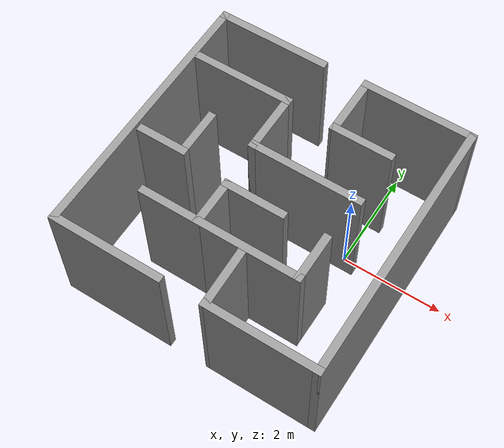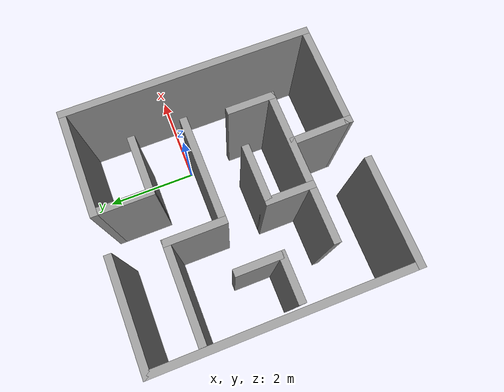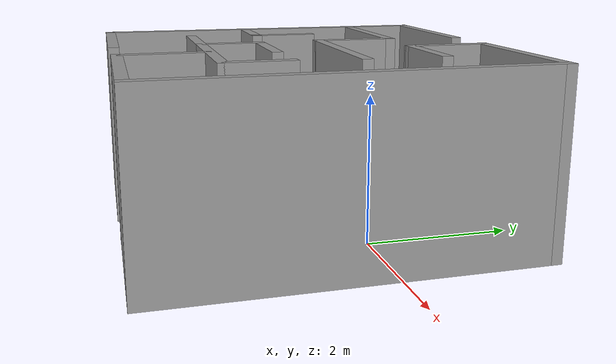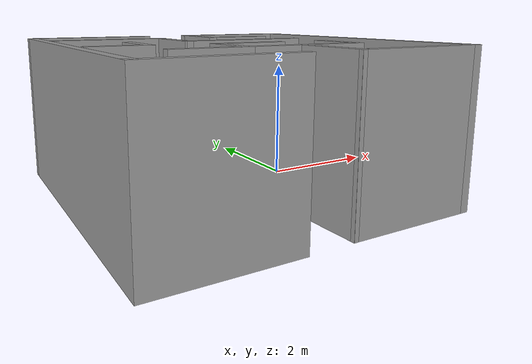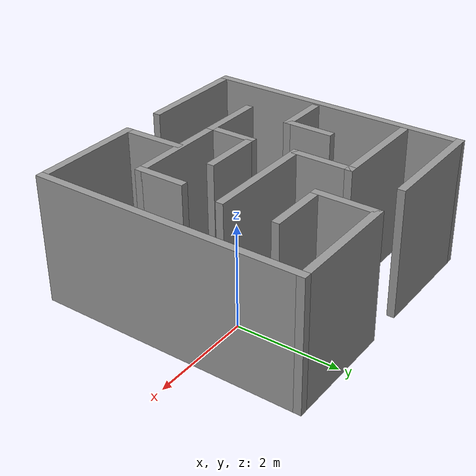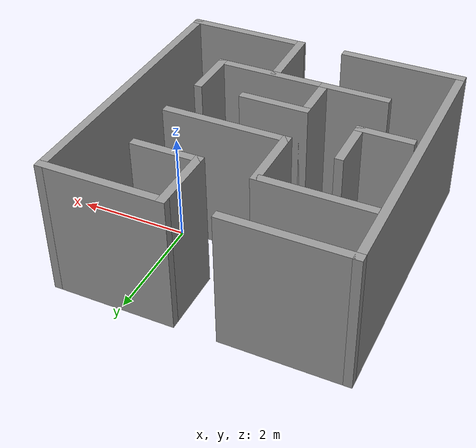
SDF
<?xml version='1.0'?>
<sdf version='1.7'>
  <model name='Untitled'>
    <pose>-1.35669 -0.540875 0 0 -0 0</pose>
    <link name='Wall_10'>
      <collision name='Wall_10_Collision'>
        <geometry>
          <box>
            <size>5.25 0.15 2.5</size>
          </box>
        </geometry>
        <pose>0 0 1.25 0 -0 0</pose>
      </collision>
      <visual name='Wall_10_Visual'>
        <pose>0 0 1.25 0 -0 0</pose>
        <geometry>
          <box>
            <size>5.25 0.15 2.5</size>
          </box>
        </geometry>
        <material>
          <script>
            <uri>file://media/materials/scripts/gazebo.material</uri>
            <name>Gazebo/Grey</name>
          </script>
          <ambient>1 1 1 1</ambient>
        </material>
        <meta>
          <layer>0</layer>
        </meta>
      </visual>
      <pose>2.54806 0.010139 0 0 -0 1.5708</pose>
    </link>
    <link name='Wall_11'>
      <collision name='Wall_11_Collision'>
        <geometry>
          <box>
            <size>2.25 0.15 2.5</size>
          </box>
        </geometry>
        <pose>0 0 1.25 0 -0 0</pose>
      </collision>
      <visual name='Wall_11_Visual'>
        <pose>0 0 1.25 0 -0 0</pose>
        <geometry>
          <box>
            <size>2.25 0.15 2.5</size>
          </box>
        </geometry>
        <material>
          <script>
            <uri>file://media/materials/scripts/gazebo.material</uri>
            <name>Gazebo/Grey</name>
          </script>
          <ambient>1 1 1 1</ambient>
        </material>
        <meta>
          <layer>0</layer>
        </meta>
      </visual>
      <pose>1.49806 2.56014 0 0 -0 3.14159</pose>
    </link>
    <link name='Wall_12'>
      <collision name='Wall_12_Collision'>
        <geometry>
          <box>
            <size>1.25 0.15 2.5</size>
          </box>
        </geometry>
        <pose>0 0 1.25 0 -0 0</pose>
      </collision>
      <visual name='Wall_12_Visual'>
        <pose>0 0 1.25 0 -0 0</pose>
        <geometry>
          <box>
            <size>1.25 0.15 2.5</size>
          </box>
        </geometry>
        <material>
          <script>
            <uri>file://media/materials/scripts/gazebo.material</uri>
            <name>Gazebo/Grey</name>
          </script>
          <ambient>1 1 1 1</ambient>
        </material>
        <meta>
          <layer>0</layer>
        </meta>
      </visual>
      <pose>0.448062 2.01014 0 0 -0 -1.5708</pose>
    </link>
    <link name='Wall_13'>
      <collision name='Wall_13_Collision'>
        <geometry>
          <box>
            <size>1.25 0.15 2.5</size>
          </box>
        </geometry>
        <pose>0 0 1.25 0 -0 0</pose>
      </collision>
      <visual name='Wall_13_Visual'>
        <pose>0 0 1.25 0 -0 0</pose>
        <geometry>
          <box>
            <size>1.25 0.15 2.5</size>
          </box>
        </geometry>
        <material>
          <script>
            <uri>file://media/materials/scripts/gazebo.material</uri>
            <name>Gazebo/Grey</name>
          </script>
          <ambient>1 1 1 1</ambient>
        </material>
        <meta>
          <layer>0</layer>
        </meta>
      </visual>
      <pose>0.998062 1.46014 0 0 -0 0</pose>
    </link>
    <link name='Wall_16'>
      <collision name='Wall_16_Collision'>
        <geometry>
          <box>
            <size>2.25 0.15 2.5</size>
          </box>
        </geometry>
        <pose>0 0 1.25 0 -0 0</pose>
      </collision>
      <visual name='Wall_16_Visual'>
        <pose>0 0 1.25 0 -0 0</pose>
        <geometry>
          <box>
            <size>2.25 0.15 2.5</size>
          </box>
        </geometry>
        <material>
          <script>
            <uri>file://media/materials/scripts/gazebo.material</uri>
            <name>Gazebo/Grey</name>
          </script>
          <ambient>1 1 1 1</ambient>
        </material>
        <meta>
          <layer>0</layer>
        </meta>
      </visual>
      <pose>-1.49806 2.53986 0 0 -0 0</pose>
    </link>
    <link name='Wall_18'>
      <collision name='Wall_18_Collision'>
        <geometry>
          <box>
            <size>2 0.15 2.5</size>
          </box>
        </geometry>
        <pose>0 0 1.25 0 -0 0</pose>
      </collision>
      <visual name='Wall_18_Visual'>
        <pose>0 0 1.25 0 -0 0</pose>
        <geometry>
          <box>
            <size>2 0.15 2.5</size>
          </box>
        </geometry>
        <material>
          <script>
            <uri>file://media/materials/scripts/gazebo.material</uri>
            <name>Gazebo/Grey</name>
          </script>
          <ambient>1 1 1 1</ambient>
        </material>
        <meta>
          <layer>0</layer>
        </meta>
      </visual>
      <pose>-1.47097 1.50567 0 0 -0 0</pose>
    </link>
    <link name='Wall_19'>
      <collision name='Wall_19_Collision'>
        <geometry>
          <box>
            <size>1.25 0.15 2.5</size>
          </box>
        </geometry>
        <pose>0 0 1.25 0 -0 0</pose>
      </collision>
      <visual name='Wall_19_Visual'>
        <pose>0 0 1.25 0 -0 0</pose>
        <geometry>
          <box>
            <size>1.25 0.15 2.5</size>
          </box>
        </geometry>
        <material>
          <script>
            <uri>file://media/materials/scripts/gazebo.material</uri>
            <name>Gazebo/Grey</name>
          </script>
          <ambient>1 1 1 1</ambient>
        </material>
        <meta>
          <layer>0</layer>
        </meta>
      </visual>
      <pose>-0.545974 0.955666 0 0 -0 -1.5708</pose>
    </link>
    <link name='Wall_20'>
      <collision name='Wall_20_Collision'>
        <geometry>
          <box>
            <size>2.25 0.15 2.5</size>
          </box>
        </geometry>
        <pose>0 0 1.25 0 -0 0</pose>
      </collision>
      <visual name='Wall_20_Visual'>
        <pose>0 0 1.25 0 -0 0</pose>
        <geometry>
          <box>
            <size>2.25 0.15 2.5</size>
          </box>
        </geometry>
        <material>
          <script>
            <uri>file://media/materials/scripts/gazebo.material</uri>
            <name>Gazebo/Grey</name>
          </script>
          <ambient>1 1 1 1</ambient>
        </material>
        <meta>
          <layer>0</layer>
        </meta>
      </visual>
      <pose>0.504026 0.405666 0 0 -0 0</pose>
    </link>
    <link name='Wall_22'>
      <collision name='Wall_22_Collision'>
        <geometry>
          <box>
            <size>1 0.15 2.5</size>
          </box>
        </geometry>
        <pose>0 0 1.25 0 -0 0</pose>
      </collision>
      <visual name='Wall_22_Visual'>
        <pose>0 0 1.25 0 -0 0</pose>
        <geometry>
          <box>
            <size>1 0.15 2.5</size>
          </box>
        </geometry>
        <material>
          <script>
            <uri>file://media/materials/scripts/gazebo.material</uri>
            <name>Gazebo/Grey</name>
          </script>
          <ambient>1 1 1 1</ambient>
        </material>
        <meta>
          <layer>0</layer>
        </meta>
      </visual>
      <pose>-1.49866 0.076889 0 0 -0 -1.5708</pose>
    </link>
    <link name='Wall_23'>
      <collision name='Wall_23_Collision'>
        <geometry>
          <box>
            <size>1 0.15 2.5</size>
          </box>
        </geometry>
        <pose>0 0 1.25 0 -0 0</pose>
      </collision>
      <visual name='Wall_23_Visual'>
        <pose>0 0 1.25 0 -0 0</pose>
        <geometry>
          <box>
            <size>1 0.15 2.5</size>
          </box>
        </geometry>
        <material>
          <script>
            <uri>file://media/materials/scripts/gazebo.material</uri>
            <name>Gazebo/Grey</name>
          </script>
          <ambient>1 1 1 1</ambient>
        </material>
        <meta>
          <layer>0</layer>
        </meta>
      </visual>
      <pose>-1.92366 -0.348111 0 0 -0 3.14159</pose>
    </link>
    <link name='Wall_25'>
      <collision name='Wall_25_Collision'>
        <geometry>
          <box>
            <size>1 0.15 2.5</size>
          </box>
        </geometry>
        <pose>0 0 1.25 0 -0 0</pose>
      </collision>
      <visual name='Wall_25_Visual'>
        <pose>0 0 1.25 0 -0 0</pose>
        <geometry>
          <box>
            <size>1 0.15 2.5</size>
          </box>
        </geometry>
        <material>
          <script>
            <uri>file://media/materials/scripts/gazebo.material</uri>
            <name>Gazebo/Grey</name>
          </script>
          <ambient>1 1 1 1</ambient>
        </material>
        <meta>
          <layer>0</layer>
        </meta>
      </visual>
      <pose>1.45184 -0.926889 0 0 -0 -1.5708</pose>
    </link>
    <link name='Wall_28'>
      <collision name='Wall_28_Collision'>
        <geometry>
          <box>
            <size>1 0.15 2.5</size>
          </box>
        </geometry>
        <pose>0 0 1.25 0 -0 0</pose>
      </collision>
      <visual name='Wall_28_Visual'>
        <pose>0 0 1.25 0 -0 0</pose>
        <geometry>
          <box>
            <size>1 0.15 2.5</size>
          </box>
        </geometry>
        <material>
          <script>
            <uri>file://media/materials/scripts/gazebo.material</uri>
            <name>Gazebo/Grey</name>
          </script>
          <ambient>1 1 1 1</ambient>
        </material>
        <meta>
          <layer>0</layer>
        </meta>
      </visual>
      <pose>-0.498161 -0.926889 0 0 -0 1.5708</pose>
    </link>
    <link name='Wall_29'>
      <collision name='Wall_29_Collision'>
        <geometry>
          <box>
            <size>1.25 0.15 2.5</size>
          </box>
        </geometry>
        <pose>0 0 1.25 0 -0 0</pose>
      </collision>
      <visual name='Wall_29_Visual'>
        <pose>0 0 1.25 0 -0 0</pose>
        <geometry>
          <box>
            <size>1.25 0.15 2.5</size>
          </box>
        </geometry>
        <material>
          <script>
            <uri>file://media/materials/scripts/gazebo.material</uri>
            <name>Gazebo/Grey</name>
          </script>
          <ambient>1 1 1 1</ambient>
        </material>
        <meta>
          <layer>0</layer>
        </meta>
      </visual>
      <pose>0.051839 -0.501889 0 0 -0 0</pose>
    </link>
    <link name='Wall_31'>
      <collision name='Wall_31_Collision'>
        <geometry>
          <box>
            <size>1.25 0.15 2.5</size>
          </box>
        </geometry>
        <pose>0 0 1.25 0 -0 0</pose>
      </collision>
      <visual name='Wall_31_Visual'>
        <pose>0 0 1.25 0 -0 0</pose>
        <geometry>
          <box>
            <size>1.25 0.15 2.5</size>
          </box>
        </geometry>
        <material>
          <script>
            <uri>file://media/materials/scripts/gazebo.material</uri>
            <name>Gazebo/Grey</name>
          </script>
          <ambient>1 1 1 1</ambient>
        </material>
        <meta>
          <layer>0</layer>
        </meta>
      </visual>
      <pose>-1.04816 -1.35189 0 0 -0 3.14159</pose>
    </link>
    <link name='Wall_35'>
      <collision name='Wall_35_Collision'>
        <geometry>
          <box>
            <size>2.1 0.15 2.5</size>
          </box>
        </geometry>
        <pose>0 0 1.25 0 -0 0</pose>
      </collision>
      <visual name='Wall_35_Visual'>
        <pose>0 0 1.25 0 -0 0</pose>
        <geometry>
          <box>
            <size>2.1 0.15 2.5</size>
          </box>
        </geometry>
        <material>
          <script>
            <uri>file://media/materials/scripts/gazebo.material</uri>
            <name>Gazebo/Grey</name>
          </script>
          <ambient>1 1 1 1</ambient>
        </material>
        <meta>
          <layer>0</layer>
        </meta>
      </visual>
      <pose>0.476839 -1.35189 0 0 -0 0</pose>
    </link>
    <link name='Wall_38'>
      <collision name='Wall_38_Collision'>
        <geometry>
          <box>
            <size>1.28282 0.15 2.5</size>
          </box>
        </geometry>
        <pose>0 0 1.25 0 -0 0</pose>
      </collision>
      <visual name='Wall_38_Visual'>
        <pose>0 0 1.25 0 -0 0</pose>
        <geometry>
          <box>
            <size>1.28282 0.15 2.5</size>
          </box>
        </geometry>
        <material>
          <script>
            <uri>file://media/materials/scripts/gazebo.material</uri>
            <name>Gazebo/Grey</name>
          </script>
          <ambient>1 1 1 1</ambient>
        </material>
        <meta>
          <layer>0</layer>
        </meta>
      </visual>
      <pose>0.435845 -1.97358 0 0 -0 -1.54923</pose>
    </link>
    <link name='Wall_6'>
      <collision name='Wall_6_Collision'>
        <geometry>
          <box>
            <size>5.25 0.15 2.5</size>
          </box>
        </geometry>
        <pose>0 0 1.25 0 -0 0</pose>
      </collision>
      <visual name='Wall_6_Visual'>
        <pose>0 0 1.25 0 -0 0</pose>
        <geometry>
          <box>
            <size>5.25 0.15 2.5</size>
          </box>
        </geometry>
        <material>
          <script>
            <uri>file://media/materials/scripts/gazebo.material</uri>
            <name>Gazebo/Grey</name>
          </script>
          <ambient>1 1 1 1</ambient>
        </material>
        <meta>
          <layer>0</layer>
        </meta>
      </visual>
      <pose>-2.54806 -0.010139 0 0 -0 -1.5708</pose>
    </link>
    <link name='Wall_7'>
      <collision name='Wall_7_Collision'>
        <geometry>
          <box>
            <size>2.25 0.15 2.5</size>
          </box>
        </geometry>
        <pose>0 0 1.25 0 -0 0</pose>
      </collision>
      <visual name='Wall_7_Visual'>
        <pose>0 0 1.25 0 -0 0</pose>
        <geometry>
          <box>
            <size>2.25 0.15 2.5</size>
          </box>
        </geometry>
        <material>
          <script>
            <uri>file://media/materials/scripts/gazebo.material</uri>
            <name>Gazebo/Grey</name>
          </script>
          <ambient>1 1 1 1</ambient>
        </material>
        <meta>
          <layer>0</layer>
        </meta>
      </visual>
      <pose>-1.49806 -2.56014 0 0 -0 0</pose>
    </link>
    <link name='Wall_9'>
      <collision name='Wall_9_Collision'>
        <geometry>
          <box>
            <size>2.25 0.15 2.5</size>
          </box>
        </geometry>
        <pose>0 0 1.25 0 -0 0</pose>
      </collision>
      <visual name='Wall_9_Visual'>
        <pose>0 0 1.25 0 -0 0</pose>
        <geometry>
          <box>
            <size>2.25 0.15 2.5</size>
          </box>
        </geometry>
        <material>
          <script>
            <uri>file://media/materials/scripts/gazebo.material</uri>
            <name>Gazebo/Grey</name>
          </script>
          <ambient>1 1 1 1</ambient>
        </material>
        <meta>
          <layer>0</layer>
        </meta>
      </visual>
      <pose>1.49806 -2.53986 0 0 -0 0</pose>
    </link>
    <static>1</static>
  </model>
</sdf>
